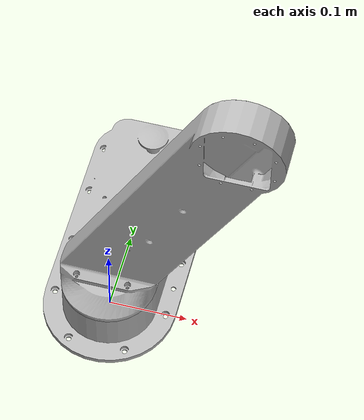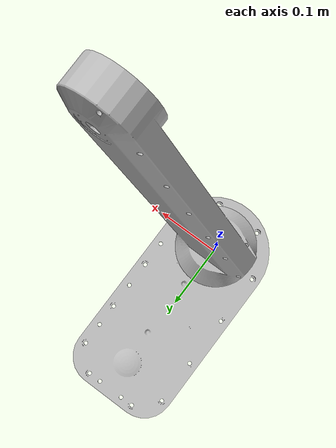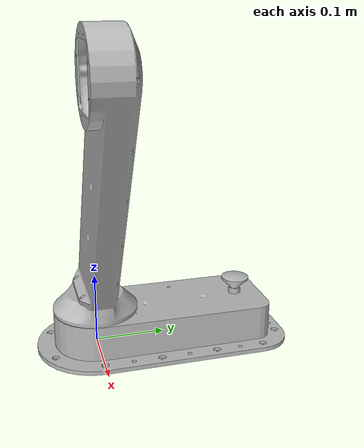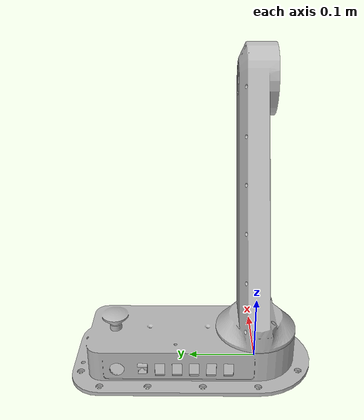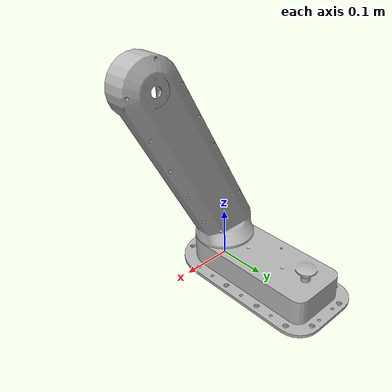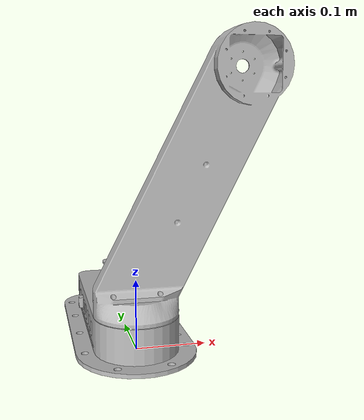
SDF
<?xml version='1.0'?>
<sdf version='1.3'>
  <model name='gambit'>

	<static>false</static>

    <link name='arm0'>
      <pose>0.000000 0.000000 0.000000 0.000000 0.000000 0.000000</pose>

      <collision name='arm0_collision'>
        <pose>0.000000 0.000000 0.000000 1.570800 -0.000000 1.570800</pose>
        <geometry>
          <mesh>
            <scale>1.000000 1.000000 1.000000</scale>
	  		<uri>model://gambit/meshes/arm0.stl</uri>
          </mesh>
        </geometry>
      </collision>

      <visual name='arm0_vis'>
        <pose>0.000000 0.000000 0.000000 1.570800 -0.000000 1.570800</pose>
		<geometry>
          <mesh>
            <scale>1.000000 1.000000 1.000000</scale>
            <uri>model://gambit/meshes/arm0.stl</uri>
          </mesh>
        </geometry>
      </visual>
    </link>

    <link name='arm1'>
      <pose>0.000000 0.000000 0.000500 0.000000 0.000000 0.000000</pose>

      <collision name='arm1_collision'>
        <pose>0.000000 0.000000 0.000000 1.570800 0.000000 -1.570800</pose>
        <geometry>
          <mesh>
            <scale>1.000000 1.000000 1.000000</scale>
			<uri>model://gambit/meshes/arm1.stl</uri>
          </mesh>
        </geometry>
      </collision>

      <visual name='arm1_vis'>
        <pose>0.000000 0.000000 0.000000 1.570800 0.000000 -1.570800</pose>
        <geometry>
          <mesh>
            <scale>1.000000 1.000000 1.000000</scale>
            <uri>model://gambit/meshes/arm1.stl</uri>
          </mesh>
        </geometry>
      </visual>
    </link>

    <joint name='waist' type='revolute'>
      <child>arm1</child>
      <parent>arm0</parent>
      <axis>
        <xyz>0.000000 0.000000 1.000000</xyz>
        <limit>
          <lower>-10000000000000000.000000</lower>
          <upper>10000000000000000.000000</upper>
        </limit>
      </axis>
    </joint>

  </model>
</sdf>
